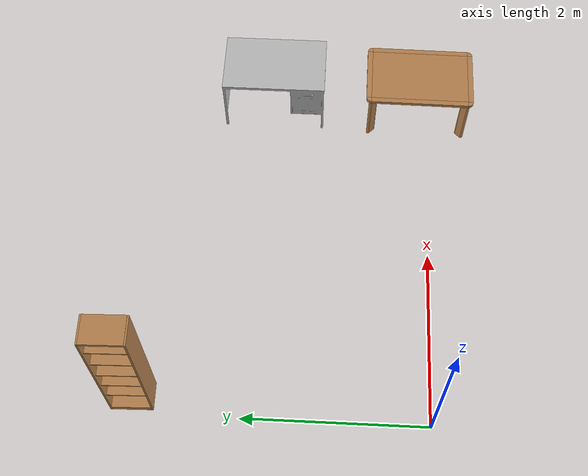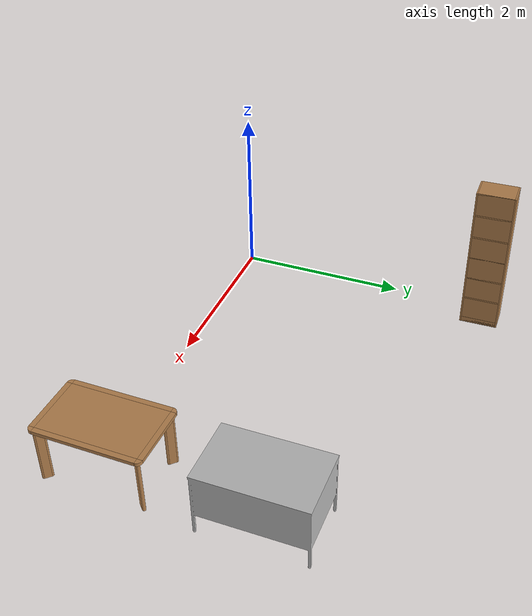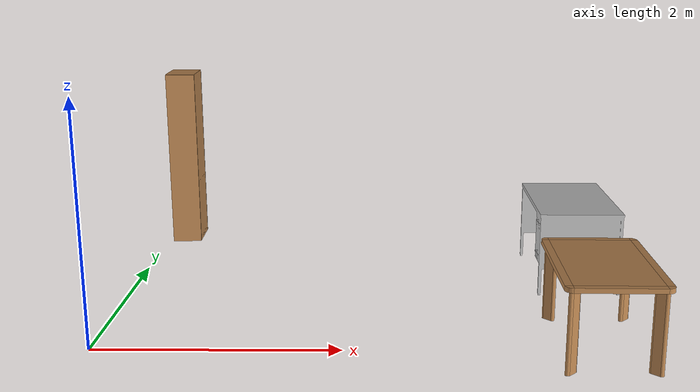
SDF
<sdf version="1.4">
 <world name="default">
  <model name="Desk_04_1">
   <link name="link_0">
    <inertial>
     <mass>15</mass>
     <inertia>
      <ixx>0.166667</ixx>
      <ixy>0</ixy>
      <ixz>0</ixz>
      <iyy>0.166667</iyy>
      <iyz>0</iyz>
      <izz>0.166667</izz>
     </inertia>
    </inertial>
    <visual name="visual">
     <geometry><mesh><uri>model://BioRoboticsLab/meshes/Desk_04.dae</uri><scale>1 1 1</scale></mesh></geometry>
     <material><lighting>1</lighting><shader type="pixel"/></material>
    </visual>
    <collision name="collision">
     <geometry><mesh><uri>model://BioRoboticsLab/meshes/Desk_04.dae</uri><scale>1 1 1</scale></mesh></geometry>
     <surface>
      <friction>
       <ode><mu>1</mu><mu2>1</mu2><fdir1>0 0 0</fdir1><slip1>0</slip1><slip2>0</slip2></ode>
       <torsional>
        <coefficient>1</coefficient>
        <patch_radius>0</patch_radius>
        <surface_radius>0</surface_radius>
        <use_patch_radius>1</use_patch_radius>
        <ode><slip>0</slip></ode>
       </torsional>
      </friction>
      <bounce><restitution_coefficient>0</restitution_coefficient><threshold>1e+06</threshold></bounce>
      <contact>
       <collide_without_contact>0</collide_without_contact>
       <collide_without_contact_bitmask>1</collide_without_contact_bitmask>
       <collide_bitmask>1</collide_bitmask>
       <ode>
        <soft_cfm>0</soft_cfm>
        <soft_erp>0.2</soft_erp>
        <kp>1e+13</kp>
        <kd>1</kd>
        <max_vel>0.01</max_vel>
        <min_depth>0</min_depth>
       </ode>
       <bullet>
        <split_impulse>1</split_impulse>
        <split_impulse_penetration_threshold>-0.01</split_impulse_penetration_threshold>
        <soft_cfm>0</soft_cfm>
        <soft_erp>0.2</soft_erp>
        <kp>1e+13</kp>
        <kd>1</kd>
       </bullet>
      </contact>
     </surface>
    </collision>
   </link>
   <static>1</static>
   <pose>4.09757 1.85712 0 0 -0 1.56877</pose>
  </model>
  <model name="kitchen_table_1">
   <link name="link">
    <inertial>
     <mass>10</mass>
     <inertia><ixx>1</ixx><ixy>0</ixy><ixz>0</ixz><iyy>1</iyy><iyz>0</iyz><izz>1</izz></inertia>
    </inertial>
    <visual name="center_board">
     <pose>0 0 0.68 0 -0 0</pose>
     <geometry><box><size>0.68 1.13 0.04</size></box></geometry>
     <material>
      <script><uri>model://base_materials/wood/scripts/wood.material</uri><name>base_materials/wood</name></script>
     </material>
    </visual>
    <collision name="collision_center_board">
     <pose>0 0 0.68 0 -0 0</pose>
     <geometry><box><size>0.68 1.13 0.04</size></box></geometry>
    </collision>
    <visual name="front_board">
     <pose>0.37 0 0.68 0 -0 0</pose>
     <geometry><box><size>0.06 1.13 0.04</size></box></geometry>
     <material>
      <script><uri>model://base_materials/wood/scripts/wood.material</uri><name>base_materials/wood</name></script>
     </material>
    </visual>
    <collision name="collision_front_board">
     <pose>0.37 0 0.68 0 -0 0</pose>
     <geometry><box><size>0.06 1.13 0.04</size></box></geometry>
    </collision>
    <visual name="back_board">
     <pose>-0.37 0 0.68 0 -0 0</pose>
     <geometry><box><size>0.06 1.13 0.04</size></box></geometry>
     <material>
      <script><uri>model://base_materials/wood/scripts/wood.material</uri><name>base_materials/wood</name></script>
     </material>
    </visual>
    <collision name="collision_back_board">
     <pose>-0.37 0 0.68 0 -0 0</pose>
     <geometry><box><size>0.06 1.13 0.04</size></box></geometry>
    </collision>
    <visual name="right_board">
     <pose>0 0.595 0.68 0 -0 0</pose>
     <geometry><box><size>0.68 0.06 0.04</size></box></geometry>
     <material>
      <script><uri>model://base_materials/wood/scripts/wood.material</uri><name>base_materials/wood</name></script>
     </material>
    </visual>
    <collision name="collision_right_board">
     <pose>0 0.595 0.68 0 -0 0</pose>
     <geometry><box><size>0.68 0.06 0.04</size></box></geometry>
    </collision>
    <visual name="left_board">
     <pose>0 -0.595 0.68 0 -0 0</pose>
     <geometry><box><size>0.68 0.06 0.04</size></box></geometry>
     <material>
      <script><uri>model://base_materials/wood/scripts/wood.material</uri><name>base_materials/wood</name></script>
     </material>
    </visual>
    <collision name="collision_left_board">
     <pose>0 -0.595 0.68 0 -0 0</pose>
     <geometry><box><size>0.68 0.06 0.04</size></box></geometry>
    </collision>
    <visual name="front_right_corner_board">
     <pose>0.34 0.565 0.68 0 -0 0</pose>
     <geometry><cylinder><radius>0.06</radius><length>0.039</length></cylinder></geometry>
     <material>
      <script><uri>model://base_materials/wood/scripts/wood.material</uri><name>base_materials/wood</name></script>
     </material>
    </visual>
    <collision name="collision_front_right_corner_board">
     <pose>0.34 0.565 0.68 0 -0 0</pose>
     <geometry><cylinder><radius>0.06</radius><length>0.039</length></cylinder></geometry>
    </collision>
    <visual name="front_left_corner_board">
     <pose>0.34 -0.565 0.68 0 -0 0</pose>
     <geometry><cylinder><radius>0.06</radius><length>0.039</length></cylinder></geometry>
     <material>
      <script><uri>model://base_materials/wood/scripts/wood.material</uri><name>base_materials/wood</name></script>
     </material>
    </visual>
    <collision name="collision_front_left_corner_board">
     <pose>0.34 -0.565 0.68 0 -0 0</pose>
     <geometry><cylinder><radius>0.06</radius><length>0.039</length></cylinder></geometry>
    </collision>
    <visual name="front_back_right_corner_board">
     <pose>-0.34 0.565 0.68 0 -0 0</pose>
     <geometry><cylinder><radius>0.06</radius><length>0.039</length></cylinder></geometry>
     <material>
      <script><uri>model://base_materials/wood/scripts/wood.material</uri><name>base_materials/wood</name></script>
     </material>
    </visual>
    <collision name="collision_back_right_corner_board">
     <pose>-0.34 0.565 0.68 0 -0 0</pose>
     <geometry><cylinder><radius>0.06</radius><length>0.039</length></cylinder></geometry>
    </collision>
    <visual name="front_back_left_corner_board">
     <pose>-0.34 -0.565 0.68 0 -0 0</pose>
     <geometry><cylinder><radius>0.06</radius><length>0.039</length></cylinder></geometry>
     <material>
      <script><uri>model://base_materials/wood/scripts/wood.material</uri><name>base_materials/wood</name></script>
     </material>
    </visual>
    <collision name="collision_back_left_corner_board">
     <pose>-0.34 -0.565 0.68 0 -0 0</pose>
     <geometry><cylinder><radius>0.06</radius><length>0.039</length></cylinder></geometry>
    </collision>
    <visual name="front_left_corner_frame1">
     <pose>0.345858 -0.57086 0.33 0 -0 0</pose>
     <geometry><cylinder><radius>0.02</radius><length>0.66</length></cylinder></geometry>
     <material>
      <script><uri>model://base_materials/wood/scripts/wood.material</uri><name>base_materials/wood</name></script>
     </material>
    </visual>
    <collision name="collision_front_left_corner_frame1">
     <pose>0.345858 -0.57086 0.33 0 -0 0</pose>
     <geometry><cylinder><radius>0.02</radius><length>0.66</length></cylinder></geometry>
    </collision>
    <visual name="front_left_corner_frame2">
     <pose>0.317574 -0.54257 0.33 0 -0 0.7854</pose>
     <geometry><box><size>0.04 0.08 0.66</size></box></geometry>
     <material>
      <script><uri>model://base_materials/wood/scripts/wood.material</uri><name>base_materials/wood</name></script>
     </material>
    </visual>
    <collision name="collision_front_left_corner_frame2">
     <pose>0.317574 -0.54257 0.33 0 -0 0.7854</pose>
     <geometry><box><size>0.04 0.08 0.66</size></box></geometry>
    </collision>
    <visual name="front_left_corner_frame3">
     <pose>0.289289 -0.51429 0.33 0 -0 0</pose>
     <geometry><cylinder><radius>0.02</radius><length>0.66</length></cylinder></geometry>
     <material>
      <script><uri>model://base_materials/wood/scripts/wood.material</uri><name>base_materials/wood</name></script>
     </material>
    </visual>
    <collision name="collision_front_left_corner_frame3">
     <pose>0.289289 -0.51429 0.33 0 -0 0</pose>
     <geometry><cylinder><radius>0.02</radius><length>0.66</length></cylinder></geometry>
    </collision>
    <visual name="front_right_corner_frame1">
     <pose>0.345858 0.57086 0.33 0 -0 0</pose>
     <geometry><cylinder><radius>0.02</radius><length>0.66</length></cylinder></geometry>
     <material>
      <script><uri>model://base_materials/wood/scripts/wood.material</uri><name>base_materials/wood</name></script>
     </material>
    </visual>
    <collision name="collision_front_right_corner_frame1">
     <pose>0.345858 0.57086 0.33 0 -0 0</pose>
     <geometry><cylinder><radius>0.02</radius><length>0.66</length></cylinder></geometry>
    </collision>
    <visual name="front_right_corner_frame2">
     <pose>0.317574 0.54257 0.33 0 0 -0.7854</pose>
     <geometry><box><size>0.04 0.08 0.66</size></box></geometry>
     <material>
      <script><uri>model://base_materials/wood/scripts/wood.material</uri><name>base_materials/wood</name></script>
     </material>
    </visual>
    <collision name="collision_front_right_corner_frame2">
     <pose>0.317574 0.54257 0.33 0 0 -0.7854</pose>
     <geometry><box><size>0.04 0.08 0.66</size></box></geometry>
    </collision>
    <visual name="front_right_corner_frame3">
     <pose>0.289289 0.51429 0.33 0 -0 0</pose>
     <geometry><cylinder><radius>0.02</radius><length>0.66</length></cylinder></geometry>
     <material>
      <script><uri>model://base_materials/wood/scripts/wood.material</uri><name>base_materials/wood</name></script>
     </material>
    </visual>
    <collision name="collision_front_right_corner_frame3">
     <pose>0.289289 0.51429 0.33 0 -0 0</pose>
     <geometry><cylinder><radius>0.02</radius><length>0.66</length></cylinder></geometry>
    </collision>
    <visual name="back_left_corner_frame1">
     <pose>-0.345858 -0.57086 0.33 0 -0 0</pose>
     <geometry><cylinder><radius>0.02</radius><length>0.66</length></cylinder></geometry>
     <material>
      <script><uri>model://base_materials/wood/scripts/wood.material</uri><name>base_materials/wood</name></script>
     </material>
    </visual>
    <collision name="collision_back_left_corner_frame1">
     <pose>-0.345858 -0.57086 0.33 0 -0 0</pose>
     <geometry><cylinder><radius>0.02</radius><length>0.66</length></cylinder></geometry>
    </collision>
    <visual name="back_left_corner_frame2">
     <pose>-0.317574 -0.54257 0.33 0 0 -0.7854</pose>
     <geometry><box><size>0.04 0.08 0.66</size></box></geometry>
     <material>
      <script><uri>model://base_materials/wood/scripts/wood.material</uri><name>base_materials/wood</name></script>
     </material>
    </visual>
    <collision name="collision_back_left_corner_frame2">
     <pose>-0.317574 -0.54257 0.33 0 0 -0.7854</pose>
     <geometry><box><size>0.04 0.08 0.66</size></box></geometry>
    </collision>
    <visual name="back_left_corner_frame3">
     <pose>-0.289289 -0.51429 0.33 0 -0 0</pose>
     <geometry><cylinder><radius>0.02</radius><length>0.66</length></cylinder></geometry>
     <material>
      <script><uri>model://base_materials/wood/scripts/wood.material</uri><name>base_materials/wood</name></script>
     </material>
    </visual>
    <collision name="collision_back_left_corner_frame3">
     <pose>-0.289289 -0.51429 0.33 0 -0 0</pose>
     <geometry><cylinder><radius>0.02</radius><length>0.66</length></cylinder></geometry>
    </collision>
    <visual name="back_right_corner_frame1">
     <pose>-0.345858 0.57086 0.33 0 -0 0</pose>
     <geometry><cylinder><radius>0.02</radius><length>0.66</length></cylinder></geometry>
     <material>
      <script><uri>model://base_materials/wood/scripts/wood.material</uri><name>base_materials/wood</name></script>
     </material>
    </visual>
    <collision name="collision_back_right_corner_frame1">
     <pose>-0.345858 0.57086 0.33 0 -0 0</pose>
     <geometry><cylinder><radius>0.02</radius><length>0.66</length></cylinder></geometry>
    </collision>
    <visual name="back_right_corner_frame2">
     <pose>-0.317574 0.54257 0.33 0 -0 0.7854</pose>
     <geometry><box><size>0.04 0.08 0.66</size></box></geometry>
     <material>
      <script><uri>model://base_materials/wood/scripts/wood.material</uri><name>base_materials/wood</name></script>
     </material>
    </visual>
    <collision name="collision_back_right_corner_frame2">
     <pose>-0.317574 0.54257 0.33 0 -0 0.7854</pose>
     <geometry><box><size>0.04 0.08 0.66</size></box></geometry>
    </collision>
    <visual name="back_right_corner_frame3">
     <pose>-0.289289 0.51429 0.33 0 -0 0</pose>
     <geometry><cylinder><radius>0.02</radius><length>0.66</length></cylinder></geometry>
     <material>
      <script><uri>model://base_materials/wood/scripts/wood.material</uri><name>base_materials/wood</name></script>
     </material>
    </visual>
    <collision name="collision_back_right_corner_frame3">
     <pose>-0.289289 0.51429 0.33 0 -0 0</pose>
     <geometry><cylinder><radius>0.02</radius><length>0.66</length></cylinder></geometry>
    </collision>
    <velocity_decay><linear>0</linear><angular>0</angular></velocity_decay>
   </link>
   <static>1</static>
   <pose>4.03519 0.132475 0 0 -0 3.12863</pose>
  </model>
  <model name="high_shelf_1">
   <link name="link">
    <inertial>
     <mass>5</mass>
     <inertia><ixx>1</ixx><ixy>0</ixy><ixz>0</ixz><iyy>1</iyy><iyz>0</iyz><izz>1</izz></inertia>
    </inertial>
    <visual name="left_board">
     <pose>-0.1475 0.009 0.898 0 -0 0</pose>
     <geometry><box><size>0.295 0.018 1.796</size></box></geometry>
     <material>
      <script>
       <uri>model://base_materials/wood/scripts</uri>
       <uri>model://base_materials/wood/textures</uri>
       <name>base_materials/light_wood</name>
      </script>
     </material>
    </visual>
    <collision name="collision_left_board">
     <pose>-0.1475 0.009 0.898 0 -0 0</pose>
     <geometry><box><size>0.295 0.018 1.796</size></box></geometry>
    </collision>
    <visual name="right_board">
     <pose>-0.1475 0.441 0.898 0 -0 0</pose>
     <geometry><box><size>0.295 0.018 1.796</size></box></geometry>
     <material>
      <script>
       <uri>model://base_materials/wood/scripts</uri>
       <uri>model://base_materials/wood/textures</uri>
       <name>base_materials/light_wood</name>
      </script>
     </material>
    </visual>
    <collision name="collision_right_board">
     <pose>-0.1475 0.441 0.898 0 -0 0</pose>
     <geometry><box><size>0.295 0.018 1.796</size></box></geometry>
    </collision>
    <visual name="top_board">
     <pose>-0.1475 0.225 1.7825 0 -0 0</pose>
     <geometry><box><size>0.295 0.414 0.035</size></box></geometry>
     <material>
      <script>
       <uri>model://base_materials/wood/scripts</uri>
       <uri>model://base_materials/wood/textures</uri>
       <name>base_materials/light_wood</name>
      </script>
     </material>
    </visual>
    <collision name="collision_top_board">
     <pose>-0.1475 0.225 1.7825 0 -0 0</pose>
     <geometry><box><size>0.295 0.414 0.035</size></box></geometry>
    </collision>
    <visual name="1st_shelf">
     <pose>-0.162 0.225 1.51 0 -0 0</pose>
     <geometry><box><size>0.266 0.414 0.018</size></box></geometry>
     <material>
      <script>
       <uri>model://base_materials/wood/scripts</uri>
       <uri>model://base_materials/wood/textures</uri>
       <name>base_materials/light_wood</name>
      </script>
     </material>
    </visual>
    <collision name="collision_1st_shelf">
     <pose>-0.162 0.225 1.51 0 -0 0</pose>
     <geometry><box><size>0.266 0.414 0.018</size></box></geometry>
    </collision>
    <visual name="2nd_shelf">
     <pose>-0.162 0.225 1.22 0 -0 0</pose>
     <geometry><box><size>0.266 0.414 0.018</size></box></geometry>
     <material>
      <script>
       <uri>model://base_materials/wood/scripts</uri>
       <uri>model://base_materials/wood/textures</uri>
       <name>base_materials/light_wood</name>
      </script>
     </material>
    </visual>
    <collision name="collision_2nd_shelf">
     <pose>-0.162 0.225 1.22 0 -0 0</pose>
     <geometry><box><size>0.266 0.414 0.018</size></box></geometry>
    </collision>
    <visual name="3rd_shelf">
     <pose>-0.162 0.225 0.93 0 -0 0</pose>
     <geometry><box><size>0.266 0.414 0.018</size></box></geometry>
     <material>
      <script>
       <uri>model://base_materials/wood/scripts</uri>
       <uri>model://base_materials/wood/textures</uri>
       <name>base_materials/light_wood</name>
      </script>
     </material>
    </visual>
    <collision name="collision_3rd_shelf">
     <pose>-0.162 0.225 0.93 0 -0 0</pose>
     <geometry><box><size>0.266 0.414 0.018</size></box></geometry>
    </collision>
    <visual name="4th_shelf">
     <pose>-0.162 0.225 0.65 0 -0 0</pose>
     <geometry><box><size>0.266 0.414 0.018</size></box></geometry>
     <material>
      <script>
       <uri>model://base_materials/wood/scripts</uri>
       <uri>model://base_materials/wood/textures</uri>
       <name>base_materials/light_wood</name>
      </script>
     </material>
    </visual>
    <collision name="collision_4th_shelf">
     <pose>-0.162 0.225 0.65 0 -0 0</pose>
     <geometry><box><size>0.266 0.414 0.018</size></box></geometry>
    </collision>
    <visual name="5th_shelf">
     <pose>-0.162 0.225 0.36 0 -0 0</pose>
     <geometry><box><size>0.266 0.414 0.018</size></box></geometry>
     <material>
      <script>
       <uri>model://base_materials/wood/scripts</uri>
       <uri>model://base_materials/wood/textures</uri>
       <name>base_materials/light_wood</name>
      </script>
     </material>
    </visual>
    <collision name="collision_5th_shelf">
     <pose>-0.162 0.225 0.36 0 -0 0</pose>
     <geometry><box><size>0.266 0.414 0.018</size></box></geometry>
    </collision>
    <visual name="bottom_board">
     <pose>-0.1475 0.225 0.035 0 -0 0</pose>
     <geometry><box><size>0.295 0.414 0.07</size></box></geometry>
     <material>
      <script>
       <uri>model://base_materials/wood/scripts</uri>
       <uri>model://base_materials/wood/textures</uri>
       <name>base_materials/light_wood</name>
      </script>
     </material>
    </visual>
    <collision name="collision_bottom_board">
     <pose>-0.1475 0.225 0.035 0 -0 0</pose>
     <geometry><box><size>0.295 0.414 0.07</size></box></geometry>
    </collision>
    <visual name="back_board">
     <pose>-0.286 0.225 0.898 0 -0 0</pose>
     <geometry><box><size>0.018 0.414 1.796</size></box></geometry>
     <material>
      <script>
       <uri>model://base_materials/wood/scripts</uri>
       <uri>model://base_materials/wood/textures</uri>
       <name>base_materials/light_wood</name>
      </script>
     </material>
    </visual>
    <collision name="collision_back_board">
     <pose>-0.286 0.225 0.898 0 -0 0</pose>
     <geometry><box><size>0.018 0.414 1.796</size></box></geometry>
    </collision>
    <velocity_decay><linear>0</linear><angular>0</angular></velocity_decay>
   </link>
   <static>1</static>
   <pose>0.042821 3.34966 0 0 0 -3.11975</pose>
  </model>
 </world>
</sdf>
